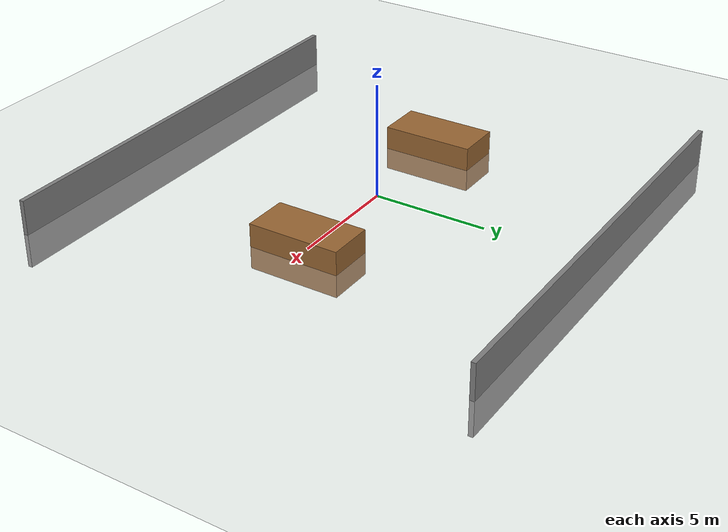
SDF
<?xml version="1.0"?>
<sdf version="1.6">
  <world name="warehouse">
    <include>
      <uri>model://sun</uri>
    </include>

    <include>
      <uri>model://ground_plane</uri>
    </include>

    <!-- Warehouse walls -->
    <model name="warehouse_wall_north">
      <static>true</static>
      <pose>0 10 0 0 0 0</pose>
      <link name="link">
        <collision name="collision">
          <geometry>
            <box>
              <size>20 0.2 3</size>
            </box>
          </geometry>
        </collision>
        <visual name="visual">
          <geometry>
            <box>
              <size>20 0.2 3</size>
            </box>
          </geometry>
          <material>
            <ambient>0.5 0.5 0.5 1</ambient>
          </material>
        </visual>
      </link>
    </model>

    <model name="warehouse_wall_south">
      <static>true</static>
      <pose>0 -10 0 0 0 0</pose>
      <link name="link">
        <collision name="collision">
          <geometry>
            <box>
              <size>20 0.2 3</size>
            </box>
          </geometry>
        </collision>
        <visual name="visual">
          <geometry>
            <box>
              <size>20 0.2 3</size>
            </box>
          </geometry>
          <material>
            <ambient>0.5 0.5 0.5 1</ambient>
          </material>
        </visual>
      </link>
    </model>

    <!-- Storage racks -->
    <model name="rack_1">
      <static>true</static>
      <pose>5 0 0 0 0 0</pose>
      <link name="link">
        <collision name="collision">
          <geometry>
            <box>
              <size>2 4 2</size>
            </box>
          </geometry>
        </collision>
        <visual name="visual">
          <geometry>
            <box>
              <size>2 4 2</size>
            </box>
          </geometry>
          <material>
            <ambient>0.6 0.4 0.2 1</ambient>
          </material>
        </visual>
      </link>
    </model>

    <model name="rack_2">
      <static>true</static>
      <pose>-5 0 0 0 0 0</pose>
      <link name="link">
        <collision name="collision">
          <geometry>
            <box>
              <size>2 4 2</size>
            </box>
          </geometry>
        </collision>
        <visual name="visual">
          <geometry>
            <box>
              <size>2 4 2</size>
            </box>
          </geometry>
          <material>
            <ambient>0.6 0.4 0.2 1</ambient>
          </material>
        </visual>
      </link>
    </model>

    <physics type="ode">
      <real_time_update_rate>1000.0</real_time_update_rate>
      <max_step_size>0.001</max_step_size>
    </physics>
  </world>
</sdf>
